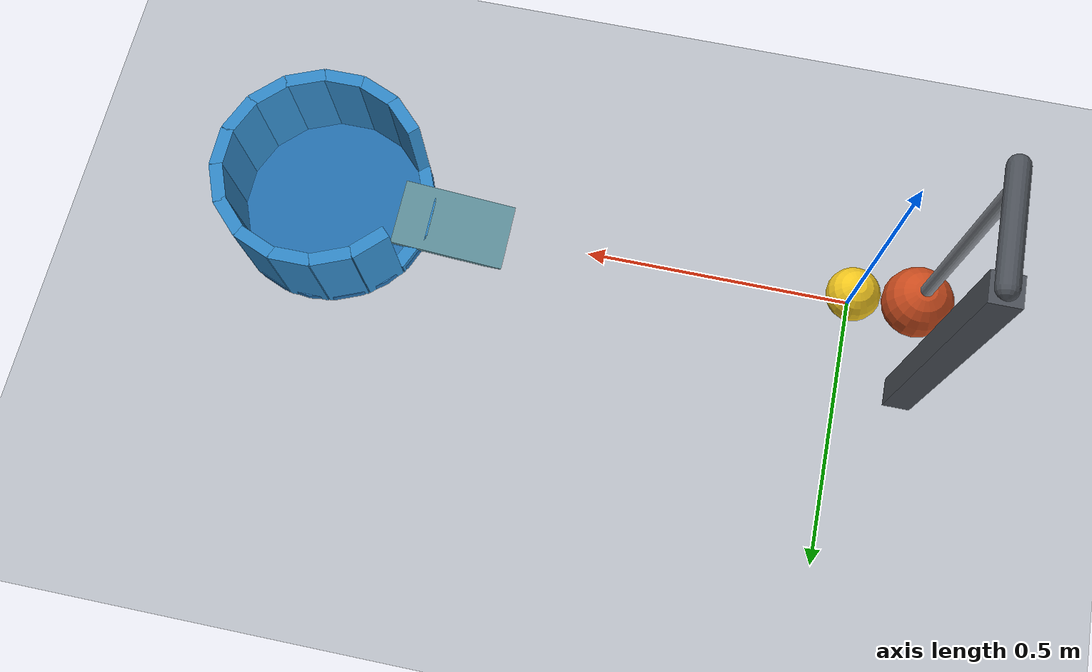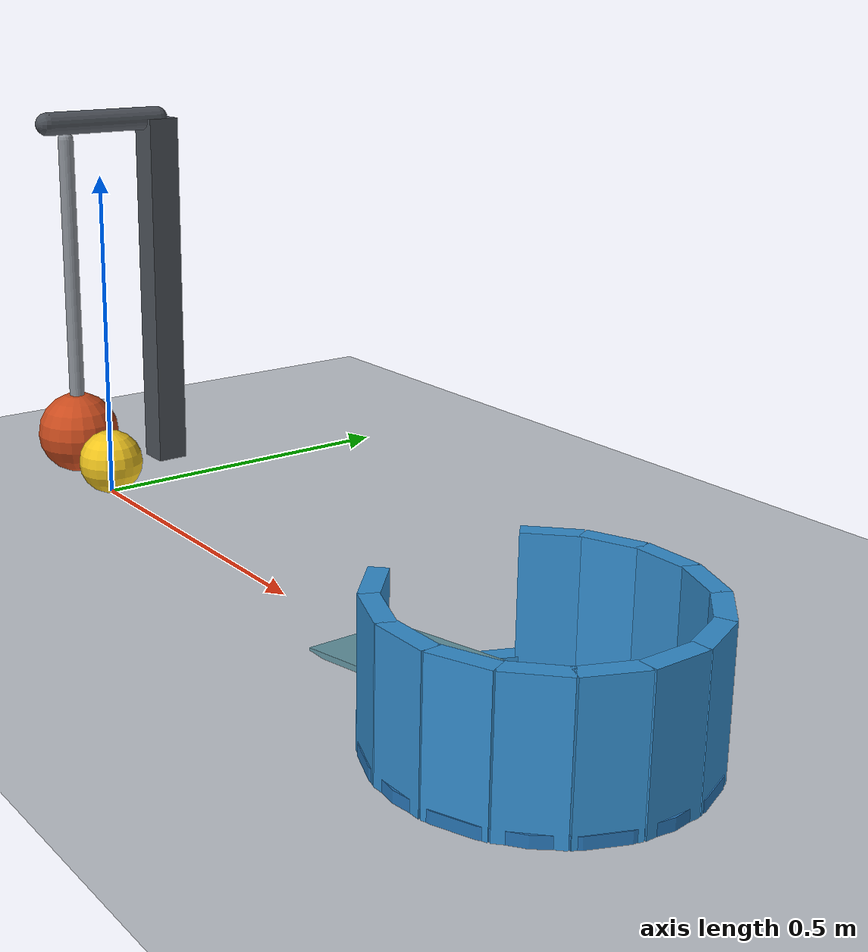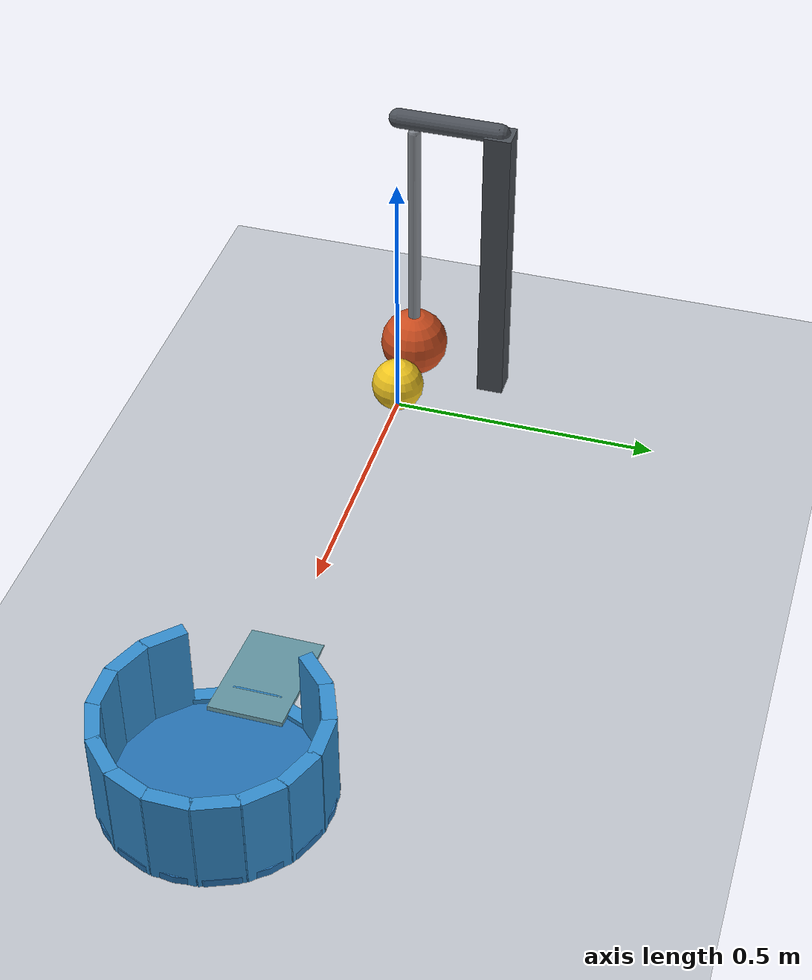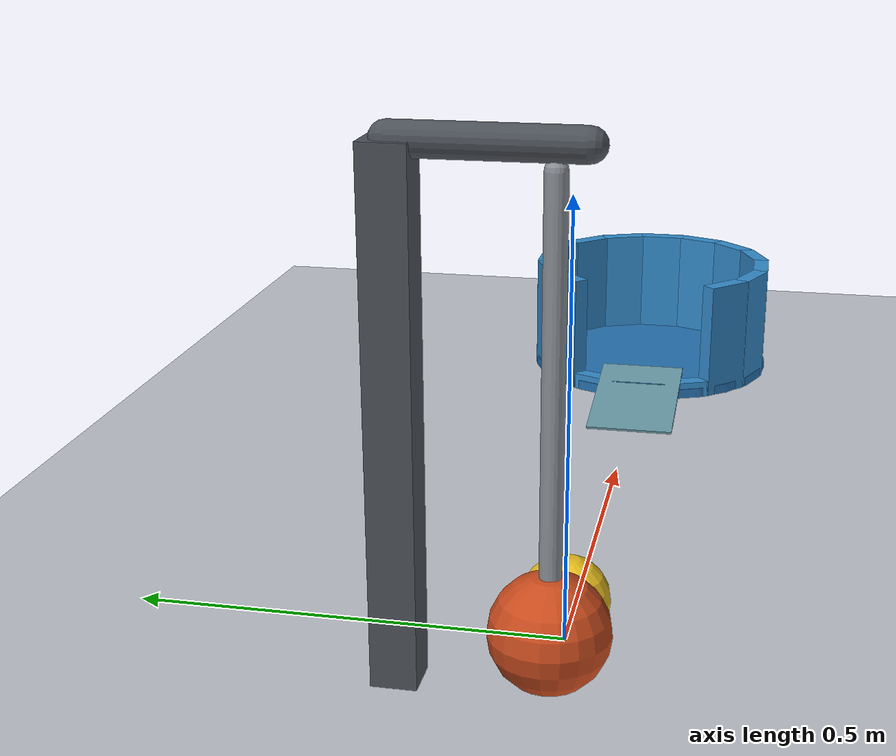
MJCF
<mujoco model="pendulum_ball_cup">
  <compiler angle="radian"/>
  <option timestep="0.002" gravity="0 0 -9.81" integrator="implicitfast" cone="elliptic" iterations="80"/>
  <size nconmax="200" njmax="1000"/>

  <visual>
    <headlight ambient="0.4 0.4 0.4" diffuse="0.7 0.7 0.7"/>
  </visual>

  <worldbody>
    <light name="light" pos="0.5 -1 3" dir="0 0 -1"/>
    <camera name="overview" pos="0.5 -3 1.8" xyaxes="1 0 0 0 0.5 0.866"/>

    <geom name="floor" type="plane" size="3 2 0.1" rgba="0.75 0.77 0.8 1" condim="6" friction="0.6 0.005 0.0008" solref="0.008 1"/>

    <body name="pendulum_support" pos="-0.114 0.16 0">
      <geom name="support_column" type="box" pos="0 0 0.285" size="0.025 0.025 0.285" rgba="0.3 0.32 0.35 1"/>
      <geom name="support_axle" type="capsule" fromto="0 0 0.57 0 -0.19 0.57" size="0.018" rgba="0.3 0.32 0.35 1" contype="0" conaffinity="0"/>
    </body>

    <body name="pendulum" pos="-0.114 0 0.57">
      <joint name="pendulum_hinge" type="hinge" axis="0 1 0" damping="0.006"/>
      <geom name="pendulum_rod" type="capsule" fromto="0 0 -0.025 0 0 -0.44" size="0.012" mass="0.015" rgba="0.55 0.57 0.6 1"/>
      <geom name="pendulum_bob" type="sphere" pos="0 0 -0.5" size="0.065" mass="0.2" rgba="0.8 0.3 0.12 1" condim="6" friction="0.5 0.005 0.0008" solref="0.006 1"/>
    </body>

    <body name="ball" pos="0 0 0.05">
      <freejoint name="ball_free"/>
      <geom name="ball" type="sphere" size="0.05" mass="0.06" rgba="0.95 0.78 0.12 1" condim="6" friction="0.6 0.005 0.0008" solref="0.008 1"/>
    </body>

    <body name="ramp" pos="0.765 0 0.014">
      <geom name="ramp" type="box" size="0.108 0.065 0.004" quat="0.997226 0 -0.074438 0" rgba="0.4 0.6 0.65 1" condim="6" friction="0.65 0.005 0.001" solref="0.008 1"/>
    </body>

    <!-- The cup's reference centre is exactly 1 m from the ball's initial centre. -->
    <!-- Three low front rim segments let the entry ramp lead into the cup. -->
    <body name="cup" pos="1 0 0.05">
      <geom name="cup_base" type="cylinder" pos="0 0 -0.0425" size="0.195 0.0075" rgba="0.15 0.45 0.7 1" priority="1" condim="6" friction="0.9 0.01 0.018" solref="0.006 1"/>

      <geom name="cup_wall_00" type="box" pos="0.18 0 0.04" size="0.012 0.037 0.09" euler="0 0 0" rgba="0.2 0.55 0.8 1" priority="1" condim="6" friction="0.9 0.01 0.018" solref="0.006 1"/>
      <geom name="cup_wall_01" type="box" pos="0.166298 0.068883 0.04" size="0.012 0.037 0.09" euler="0 0 0.392699" rgba="0.2 0.55 0.8 1" priority="1" condim="6" friction="0.9 0.01 0.018" solref="0.006 1"/>
      <geom name="cup_wall_02" type="box" pos="0.127279 0.127279 0.04" size="0.012 0.037 0.09" euler="0 0 0.785398" rgba="0.2 0.55 0.8 1" priority="1" condim="6" friction="0.9 0.01 0.018" solref="0.006 1"/>
      <geom name="cup_wall_03" type="box" pos="0.068883 0.166298 0.04" size="0.012 0.037 0.09" euler="0 0 1.178097" rgba="0.2 0.55 0.8 1" priority="1" condim="6" friction="0.9 0.01 0.018" solref="0.006 1"/>
      <geom name="cup_wall_04" type="box" pos="0 0.18 0.04" size="0.012 0.037 0.09" euler="0 0 1.570796" rgba="0.2 0.55 0.8 1" priority="1" condim="6" friction="0.9 0.01 0.018" solref="0.006 1"/>
      <geom name="cup_wall_05" type="box" pos="-0.068883 0.166298 0.04" size="0.012 0.037 0.09" euler="0 0 1.963495" rgba="0.2 0.55 0.8 1" priority="1" condim="6" friction="0.9 0.01 0.018" solref="0.006 1"/>
      <geom name="cup_wall_06" type="box" pos="-0.127279 0.127279 0.04" size="0.012 0.037 0.09" euler="0 0 2.356194" rgba="0.2 0.55 0.8 1" priority="1" condim="6" friction="0.9 0.01 0.018" solref="0.006 1"/>

      <geom name="cup_wall_07" type="box" pos="-0.166298 0.068883 -0.0375" size="0.012 0.037 0.0125" euler="0 0 2.748894" rgba="0.2 0.55 0.8 1" condim="6" friction="0.65 0.005 0.001" solref="0.008 1"/>
      <geom name="cup_wall_08" type="box" pos="-0.18 0 -0.0375" size="0.012 0.037 0.0125" euler="0 0 3.141593" rgba="0.2 0.55 0.8 1" condim="6" friction="0.65 0.005 0.001" solref="0.008 1"/>
      <geom name="cup_wall_09" type="box" pos="-0.166298 -0.068883 -0.0375" size="0.012 0.037 0.0125" euler="0 0 3.534292" rgba="0.2 0.55 0.8 1" condim="6" friction="0.65 0.005 0.001" solref="0.008 1"/>

      <geom name="cup_wall_10" type="box" pos="-0.127279 -0.127279 0.04" size="0.012 0.037 0.09" euler="0 0 3.926991" rgba="0.2 0.55 0.8 1" priority="1" condim="6" friction="0.9 0.01 0.018" solref="0.006 1"/>
      <geom name="cup_wall_11" type="box" pos="-0.068883 -0.166298 0.04" size="0.012 0.037 0.09" euler="0 0 4.319690" rgba="0.2 0.55 0.8 1" priority="1" condim="6" friction="0.9 0.01 0.018" solref="0.006 1"/>
      <geom name="cup_wall_12" type="box" pos="0 -0.18 0.04" size="0.012 0.037 0.09" euler="0 0 4.712389" rgba="0.2 0.55 0.8 1" priority="1" condim="6" friction="0.9 0.01 0.018" solref="0.006 1"/>
      <geom name="cup_wall_13" type="box" pos="0.068883 -0.166298 0.04" size="0.012 0.037 0.09" euler="0 0 5.105088" rgba="0.2 0.55 0.8 1" priority="1" condim="6" friction="0.9 0.01 0.018" solref="0.006 1"/>
      <geom name="cup_wall_14" type="box" pos="0.127279 -0.127279 0.04" size="0.012 0.037 0.09" euler="0 0 5.497787" rgba="0.2 0.55 0.8 1" priority="1" condim="6" friction="0.9 0.01 0.018" solref="0.006 1"/>
      <geom name="cup_wall_15" type="box" pos="0.166298 -0.068883 0.04" size="0.012 0.037 0.09" euler="0 0 5.890486" rgba="0.2 0.55 0.8 1" priority="1" condim="6" friction="0.9 0.01 0.018" solref="0.006 1"/>
    </body>
  </worldbody>

  <keyframe>
    <key name="start" qpos="0.8 0 0 0.05 1 0 0 0" qvel="0 0 0 0 0 0 0"/>
  </keyframe>
</mujoco>
